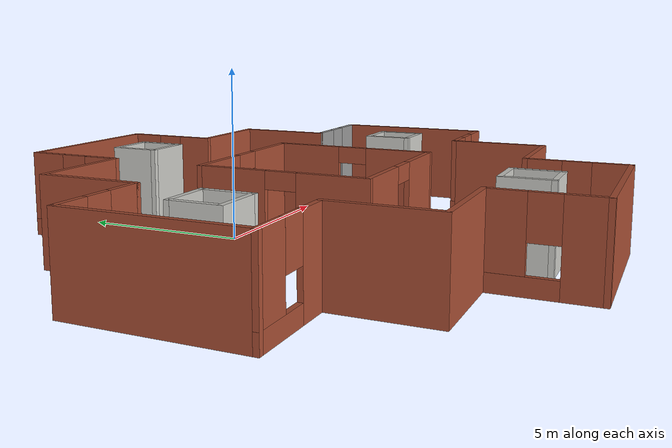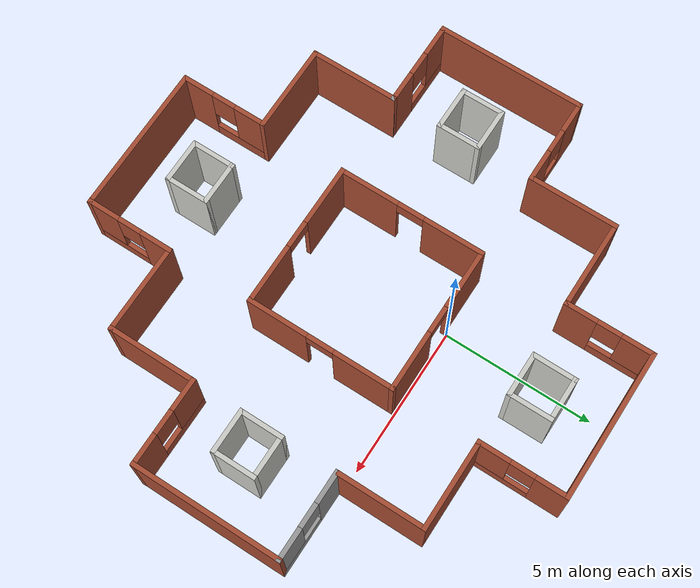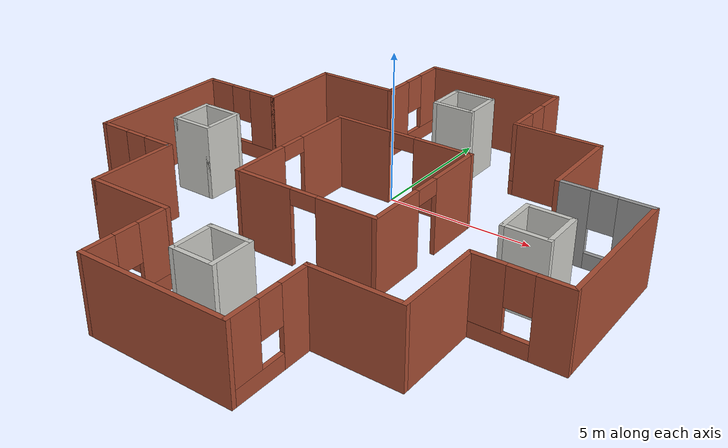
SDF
<?xml version='1.0'?>
<sdf version='1.6'>
  <model name='flower_building'>
    <pose frame=''>0.473289 -2.56902 0 0 -0 0</pose>
    <link name='Wall_0'>
      <pose frame=''>0 -2.425 0 0 -0 0</pose>
      <visual name='Wall_0_Visual_0'>
        <pose frame=''>-1.47548 0 1.25 0 -0 0</pose>
        <geometry>
          <box>
            <size>2.04905 0.15 2.5</size>
          </box>
        </geometry>
        <material>
          <script>
            <uri>file://media/materials/scripts/gazebo.material</uri>
            <name>Gazebo/Bricks</name>
          </script>
          <ambient>1 1 1 1</ambient>
        </material>
        <meta>
          <layer>0</layer>
        </meta>
      </visual>
      <collision name='Wall_0_Collision_0'>
        <geometry>
          <box>
            <size>2.04905 0.15 2.5</size>
          </box>
        </geometry>
        <pose frame=''>-1.47548 0 1.25 0 -0 0</pose>
      </collision>
      <visual name='Wall_0_Visual_1'>
        <pose frame=''>1.47452 0 1.25 0 -0 0</pose>
        <geometry>
          <box>
            <size>2.05096 0.15 2.5</size>
          </box>
        </geometry>
        <material>
          <script>
            <uri>file://media/materials/scripts/gazebo.material</uri>
            <name>Gazebo/Bricks</name>
          </script>
          <ambient>1 1 1 1</ambient>
        </material>
        <meta>
          <layer>0</layer>
        </meta>
      </visual>
      <collision name='Wall_0_Collision_1'>
        <geometry>
          <box>
            <size>2.05096 0.15 2.5</size>
          </box>
        </geometry>
        <pose frame=''>1.47452 0 1.25 0 -0 0</pose>
      </collision>
      <visual name='Wall_0_Visual_2'>
        <pose frame=''>-0.000955 0 2.25 0 -0 0</pose>
        <geometry>
          <box>
            <size>0.9 0.15 0.5</size>
          </box>
        </geometry>
        <material>
          <script>
            <uri>file://media/materials/scripts/gazebo.material</uri>
            <name>Gazebo/Bricks</name>
          </script>
          <ambient>1 1 1 1</ambient>
        </material>
        <meta>
          <layer>0</layer>
        </meta>
      </visual>
      <collision name='Wall_0_Collision_2'>
        <geometry>
          <box>
            <size>0.9 0.15 0.5</size>
          </box>
        </geometry>
        <pose frame=''>-0.000955 0 2.25 0 -0 0</pose>
      </collision>
    </link>
    <link name='Wall_1'>
      <pose frame=''>2.425 0 0 0 -0 1.5708</pose>
      <visual name='Wall_1_Visual_0'>
        <pose frame=''>-1.47928 0 1.25 0 -0 0</pose>
        <geometry>
          <box>
            <size>2.04145 0.15 2.5</size>
          </box>
        </geometry>
        <material>
          <script>
            <uri>file://media/materials/scripts/gazebo.material</uri>
            <name>Gazebo/Bricks</name>
          </script>
          <ambient>1 1 1 1</ambient>
        </material>
        <meta>
          <layer>0</layer>
        </meta>
      </visual>
      <collision name='Wall_1_Collision_0'>
        <geometry>
          <box>
            <size>2.04145 0.15 2.5</size>
          </box>
        </geometry>
        <pose frame=''>-1.47928 0 1.25 0 -0 0</pose>
      </collision>
      <visual name='Wall_1_Visual_1'>
        <pose frame=''>1.47072 0 1.25 0 -0 0</pose>
        <geometry>
          <box>
            <size>2.05855 0.15 2.5</size>
          </box>
        </geometry>
        <material>
          <script>
            <uri>file://media/materials/scripts/gazebo.material</uri>
            <name>Gazebo/Bricks</name>
          </script>
          <ambient>1 1 1 1</ambient>
        </material>
        <meta>
          <layer>0</layer>
        </meta>
      </visual>
      <collision name='Wall_1_Collision_1'>
        <geometry>
          <box>
            <size>2.05855 0.15 2.5</size>
          </box>
        </geometry>
        <pose frame=''>1.47072 0 1.25 0 -0 0</pose>
      </collision>
      <visual name='Wall_1_Visual_2'>
        <pose frame=''>-0.008554 0 2.25 0 -0 0</pose>
        <geometry>
          <box>
            <size>0.9 0.15 0.5</size>
          </box>
        </geometry>
        <material>
          <script>
            <uri>file://media/materials/scripts/gazebo.material</uri>
            <name>Gazebo/Bricks</name>
          </script>
          <ambient>1 1 1 1</ambient>
        </material>
        <meta>
          <layer>0</layer>
        </meta>
      </visual>
      <collision name='Wall_1_Collision_2'>
        <geometry>
          <box>
            <size>0.9 0.15 0.5</size>
          </box>
        </geometry>
        <pose frame=''>-0.008554 0 2.25 0 -0 0</pose>
      </collision>
    </link>
    <link name='Wall_10'>
      <collision name='Wall_10_Collision'>
        <geometry>
          <box>
            <size>5 0.15 2.5</size>
          </box>
        </geometry>
        <pose frame=''>0 0 1.25 0 -0 0</pose>
      </collision>
      <visual name='Wall_10_Visual'>
        <pose frame=''>0 0 1.25 0 -0 0</pose>
        <geometry>
          <box>
            <size>5 0.15 2.5</size>
          </box>
        </geometry>
        <material>
          <script>
            <uri>file://media/materials/scripts/gazebo.material</uri>
            <name>Gazebo/Bricks</name>
          </script>
          <ambient>1 1 1 1</ambient>
        </material>
        <meta>
          <layer>0</layer>
        </meta>
      </visual>
      <pose frame=''>-8.125 0 0 0 -0 1.5708</pose>
    </link>
    <link name='Wall_11'>
      <pose frame=''>-6.7 2.425 0 0 -0 0</pose>
      <visual name='Wall_11_Visual_0'>
        <pose frame=''>-0.954007 0 1.25 0 -0 0</pose>
        <geometry>
          <box>
            <size>1.09199 0.15 2.5</size>
          </box>
        </geometry>
        <material>
          <script>
            <uri>file://media/materials/scripts/gazebo.material</uri>
            <name>Gazebo/Bricks</name>
          </script>
          <ambient>1 1 1 1</ambient>
        </material>
        <meta>
          <layer>0</layer>
        </meta>
      </visual>
      <collision name='Wall_11_Collision_0'>
        <geometry>
          <box>
            <size>1.09199 0.15 2.5</size>
          </box>
        </geometry>
        <pose frame=''>-0.954007 0 1.25 0 -0 0</pose>
      </collision>
      <visual name='Wall_11_Visual_1'>
        <pose frame=''>0.545993 0 0.25 0 -0 0</pose>
        <geometry>
          <box>
            <size>1.90801 0.15 0.5</size>
          </box>
        </geometry>
        <material>
          <script>
            <uri>file://media/materials/scripts/gazebo.material</uri>
            <name>Gazebo/Bricks</name>
          </script>
          <ambient>1 1 1 1</ambient>
        </material>
        <meta>
          <layer>0</layer>
        </meta>
      </visual>
      <collision name='Wall_11_Collision_1'>
        <geometry>
          <box>
            <size>1.90801 0.15 0.5</size>
          </box>
        </geometry>
        <pose frame=''>0.545993 0 0.25 0 -0 0</pose>
      </collision>
      <visual name='Wall_11_Visual_2'>
        <pose frame=''>0.945993 0 1.5 0 -0 0</pose>
        <geometry>
          <box>
            <size>1.10801 0.15 2</size>
          </box>
        </geometry>
        <material>
          <script>
            <uri>file://media/materials/scripts/gazebo.material</uri>
            <name>Gazebo/Bricks</name>
          </script>
          <ambient>1 1 1 1</ambient>
        </material>
        <meta>
          <layer>0</layer>
        </meta>
      </visual>
      <collision name='Wall_11_Collision_2'>
        <geometry>
          <box>
            <size>1.10801 0.15 2</size>
          </box>
        </geometry>
        <pose frame=''>0.945993 0 1.5 0 -0 0</pose>
      </collision>
      <visual name='Wall_11_Visual_3'>
        <pose frame=''>-0.008013 0 1.9 0 -0 0</pose>
        <geometry>
          <box>
            <size>0.8 0.15 1.2</size>
          </box>
        </geometry>
        <material>
          <script>
            <uri>file://media/materials/scripts/gazebo.material</uri>
            <name>Gazebo/Bricks</name>
          </script>
          <ambient>1 1 1 1</ambient>
        </material>
        <meta>
          <layer>0</layer>
        </meta>
      </visual>
      <collision name='Wall_11_Collision_3'>
        <geometry>
          <box>
            <size>0.8 0.15 1.2</size>
          </box>
        </geometry>
        <pose frame=''>-0.008013 0 1.9 0 -0 0</pose>
      </collision>
    </link>
    <link name='Wall_12'>
      <collision name='Wall_12_Collision'>
        <geometry>
          <box>
            <size>3 0.15 2.5</size>
          </box>
        </geometry>
        <pose frame=''>0 0 1.25 0 -0 0</pose>
      </collision>
      <visual name='Wall_12_Visual'>
        <pose frame=''>0 0 1.25 0 -0 0</pose>
        <geometry>
          <box>
            <size>3 0.15 2.5</size>
          </box>
        </geometry>
        <material>
          <script>
            <uri>file://media/materials/scripts/gazebo.material</uri>
            <name>Gazebo/Bricks</name>
          </script>
          <ambient>1 1 1 1</ambient>
        </material>
        <meta>
          <layer>0</layer>
        </meta>
      </visual>
      <pose frame=''>-5.275 3.85 0 0 -0 1.5708</pose>
    </link>
    <link name='Wall_13'>
      <collision name='Wall_13_Collision'>
        <geometry>
          <box>
            <size>3 0.15 2.5</size>
          </box>
        </geometry>
        <pose frame=''>0 0 1.25 0 -0 0</pose>
      </collision>
      <visual name='Wall_13_Visual'>
        <pose frame=''>0 0 1.25 0 -0 0</pose>
        <geometry>
          <box>
            <size>3 0.15 2.5</size>
          </box>
        </geometry>
        <material>
          <script>
            <uri>file://media/materials/scripts/gazebo.material</uri>
            <name>Gazebo/Bricks</name>
          </script>
          <ambient>1 1 1 1</ambient>
        </material>
        <meta>
          <layer>0</layer>
        </meta>
      </visual>
      <pose frame=''>-3.85 5.275 0 0 -0 0</pose>
    </link>
    <link name='Wall_14'>
      <pose frame=''>-2.425 6.7 0 0 -0 1.5708</pose>
      <visual name='Wall_14_Visual_0'>
        <pose frame=''>-0.950748 0 1.25 0 -0 0</pose>
        <geometry>
          <box>
            <size>1.09851 0.15 2.5</size>
          </box>
        </geometry>
        <material>
          <script>
            <uri>file://media/materials/scripts/gazebo.material</uri>
            <name>Gazebo/Bricks</name>
          </script>
          <ambient>1 1 1 1</ambient>
        </material>
        <meta>
          <layer>0</layer>
        </meta>
      </visual>
      <collision name='Wall_14_Collision_0'>
        <geometry>
          <box>
            <size>1.09851 0.15 2.5</size>
          </box>
        </geometry>
        <pose frame=''>-0.950748 0 1.25 0 -0 0</pose>
      </collision>
      <visual name='Wall_14_Visual_1'>
        <pose frame=''>0.549252 0 0.25 0 -0 0</pose>
        <geometry>
          <box>
            <size>1.90149 0.15 0.5</size>
          </box>
        </geometry>
        <material>
          <script>
            <uri>file://media/materials/scripts/gazebo.material</uri>
            <name>Gazebo/Bricks</name>
          </script>
          <ambient>1 1 1 1</ambient>
        </material>
        <meta>
          <layer>0</layer>
        </meta>
      </visual>
      <collision name='Wall_14_Collision_1'>
        <geometry>
          <box>
            <size>1.90149 0.15 0.5</size>
          </box>
        </geometry>
        <pose frame=''>0.549252 0 0.25 0 -0 0</pose>
      </collision>
      <visual name='Wall_14_Visual_2'>
        <pose frame=''>0.949252 0 1.5 0 -0 0</pose>
        <geometry>
          <box>
            <size>1.10149 0.15 2</size>
          </box>
        </geometry>
        <material>
          <script>
            <uri>file://media/materials/scripts/gazebo.material</uri>
            <name>Gazebo/Bricks</name>
          </script>
          <ambient>1 1 1 1</ambient>
        </material>
        <meta>
          <layer>0</layer>
        </meta>
      </visual>
      <collision name='Wall_14_Collision_2'>
        <geometry>
          <box>
            <size>1.10149 0.15 2</size>
          </box>
        </geometry>
        <pose frame=''>0.949252 0 1.5 0 -0 0</pose>
      </collision>
      <visual name='Wall_14_Visual_3'>
        <pose frame=''>-0.001495 0 1.9 0 -0 0</pose>
        <geometry>
          <box>
            <size>0.8 0.15 1.2</size>
          </box>
        </geometry>
        <material>
          <script>
            <uri>file://media/materials/scripts/gazebo.material</uri>
            <name>Gazebo/Bricks</name>
          </script>
          <ambient>1 1 1 1</ambient>
        </material>
        <meta>
          <layer>0</layer>
        </meta>
      </visual>
      <collision name='Wall_14_Collision_3'>
        <geometry>
          <box>
            <size>0.8 0.15 1.2</size>
          </box>
        </geometry>
        <pose frame=''>-0.001495 0 1.9 0 -0 0</pose>
      </collision>
    </link>
    <link name='Wall_15'>
      <collision name='Wall_15_Collision'>
        <geometry>
          <box>
            <size>5 0.15 2.5</size>
          </box>
        </geometry>
        <pose frame=''>0 0 1.25 0 -0 0</pose>
      </collision>
      <visual name='Wall_15_Visual'>
        <pose frame=''>0 0 1.25 0 -0 0</pose>
        <geometry>
          <box>
            <size>5 0.15 2.5</size>
          </box>
        </geometry>
        <material>
          <script>
            <uri>file://media/materials/scripts/gazebo.material</uri>
            <name>Gazebo/Bricks</name>
          </script>
          <ambient>1 1 1 1</ambient>
        </material>
        <meta>
          <layer>0</layer>
        </meta>
      </visual>
      <pose frame=''>0 8.125 0 0 -0 0</pose>
    </link>
    <link name='Wall_18'>
      <pose frame=''>2.425 6.7 0 0 0 -1.5708</pose>
      <visual name='Wall_18_Visual_0'>
        <pose frame=''>-0.949252 0 1.25 0 -0 0</pose>
        <geometry>
          <box>
            <size>1.10149 0.15 2.5</size>
          </box>
        </geometry>
        <material>
          <script>
            <uri>file://media/materials/scripts/gazebo.material</uri>
            <name>Gazebo/Bricks</name>
          </script>
          <ambient>1 1 1 1</ambient>
        </material>
        <meta>
          <layer>0</layer>
        </meta>
      </visual>
      <collision name='Wall_18_Collision_0'>
        <geometry>
          <box>
            <size>1.10149 0.15 2.5</size>
          </box>
        </geometry>
        <pose frame=''>-0.949252 0 1.25 0 -0 0</pose>
      </collision>
      <visual name='Wall_18_Visual_1'>
        <pose frame=''>0.550748 0 0.25 0 -0 0</pose>
        <geometry>
          <box>
            <size>1.89851 0.15 0.5</size>
          </box>
        </geometry>
        <material>
          <script>
            <uri>file://media/materials/scripts/gazebo.material</uri>
            <name>Gazebo/Bricks</name>
          </script>
          <ambient>1 1 1 1</ambient>
        </material>
        <meta>
          <layer>0</layer>
        </meta>
      </visual>
      <collision name='Wall_18_Collision_1'>
        <geometry>
          <box>
            <size>1.89851 0.15 0.5</size>
          </box>
        </geometry>
        <pose frame=''>0.550748 0 0.25 0 -0 0</pose>
      </collision>
      <visual name='Wall_18_Visual_2'>
        <pose frame=''>0.950748 0 1.5 0 -0 0</pose>
        <geometry>
          <box>
            <size>1.09851 0.15 2</size>
          </box>
        </geometry>
        <material>
          <script>
            <uri>file://media/materials/scripts/gazebo.material</uri>
            <name>Gazebo/Bricks</name>
          </script>
          <ambient>1 1 1 1</ambient>
        </material>
        <meta>
          <layer>0</layer>
        </meta>
      </visual>
      <collision name='Wall_18_Collision_2'>
        <geometry>
          <box>
            <size>1.09851 0.15 2</size>
          </box>
        </geometry>
        <pose frame=''>0.950748 0 1.5 0 -0 0</pose>
      </collision>
      <visual name='Wall_18_Visual_3'>
        <pose frame=''>0.001495 0 1.9 0 -0 0</pose>
        <geometry>
          <box>
            <size>0.8 0.15 1.2</size>
          </box>
        </geometry>
        <material>
          <script>
            <uri>file://media/materials/scripts/gazebo.material</uri>
            <name>Gazebo/Bricks</name>
          </script>
          <ambient>1 1 1 1</ambient>
        </material>
        <meta>
          <layer>0</layer>
        </meta>
      </visual>
      <collision name='Wall_18_Collision_3'>
        <geometry>
          <box>
            <size>0.8 0.15 1.2</size>
          </box>
        </geometry>
        <pose frame=''>0.001495 0 1.9 0 -0 0</pose>
      </collision>
    </link>
    <link name='Wall_19'>
      <collision name='Wall_19_Collision'>
        <geometry>
          <box>
            <size>3 0.15 2.5</size>
          </box>
        </geometry>
        <pose frame=''>0 0 1.25 0 -0 0</pose>
      </collision>
      <visual name='Wall_19_Visual'>
        <pose frame=''>0 0 1.25 0 -0 0</pose>
        <geometry>
          <box>
            <size>3 0.15 2.5</size>
          </box>
        </geometry>
        <material>
          <script>
            <uri>file://media/materials/scripts/gazebo.material</uri>
            <name>Gazebo/Bricks</name>
          </script>
          <ambient>1 1 1 1</ambient>
        </material>
        <meta>
          <layer>0</layer>
        </meta>
      </visual>
      <pose frame=''>3.85 5.275 0 0 -0 0</pose>
    </link>
    <link name='Wall_2'>
      <pose frame=''>0 2.425 0 0 -0 3.14159</pose>
      <visual name='Wall_2_Visual_0'>
        <pose frame=''>-1.47452 0 1.25 0 -0 0</pose>
        <geometry>
          <box>
            <size>2.05096 0.15 2.5</size>
          </box>
        </geometry>
        <material>
          <script>
            <uri>file://media/materials/scripts/gazebo.material</uri>
            <name>Gazebo/Bricks</name>
          </script>
          <ambient>1 1 1 1</ambient>
        </material>
        <meta>
          <layer>0</layer>
        </meta>
      </visual>
      <collision name='Wall_2_Collision_0'>
        <geometry>
          <box>
            <size>2.05096 0.15 2.5</size>
          </box>
        </geometry>
        <pose frame=''>-1.47452 0 1.25 0 -0 0</pose>
      </collision>
      <visual name='Wall_2_Visual_1'>
        <pose frame=''>1.47548 0 1.25 0 -0 0</pose>
        <geometry>
          <box>
            <size>2.04905 0.15 2.5</size>
          </box>
        </geometry>
        <material>
          <script>
            <uri>file://media/materials/scripts/gazebo.material</uri>
            <name>Gazebo/Bricks</name>
          </script>
          <ambient>1 1 1 1</ambient>
        </material>
        <meta>
          <layer>0</layer>
        </meta>
      </visual>
      <collision name='Wall_2_Collision_1'>
        <geometry>
          <box>
            <size>2.04905 0.15 2.5</size>
          </box>
        </geometry>
        <pose frame=''>1.47548 0 1.25 0 -0 0</pose>
      </collision>
      <visual name='Wall_2_Visual_2'>
        <pose frame=''>0.000955 0 2.25 0 -0 0</pose>
        <geometry>
          <box>
            <size>0.9 0.15 0.5</size>
          </box>
        </geometry>
        <material>
          <script>
            <uri>file://media/materials/scripts/gazebo.material</uri>
            <name>Gazebo/Bricks</name>
          </script>
          <ambient>1 1 1 1</ambient>
        </material>
        <meta>
          <layer>0</layer>
        </meta>
      </visual>
      <collision name='Wall_2_Collision_2'>
        <geometry>
          <box>
            <size>0.9 0.15 0.5</size>
          </box>
        </geometry>
        <pose frame=''>0.000955 0 2.25 0 -0 0</pose>
      </collision>
    </link>
    <link name='Wall_20'>
      <collision name='Wall_20_Collision'>
        <geometry>
          <box>
            <size>3 0.15 2.5</size>
          </box>
        </geometry>
        <pose frame=''>0 0 1.25 0 -0 0</pose>
      </collision>
      <visual name='Wall_20_Visual'>
        <pose frame=''>0 0 1.25 0 -0 0</pose>
        <geometry>
          <box>
            <size>3 0.15 2.5</size>
          </box>
        </geometry>
        <material>
          <script>
            <uri>file://media/materials/scripts/gazebo.material</uri>
            <name>Gazebo/Bricks</name>
          </script>
          <ambient>1 1 1 1</ambient>
        </material>
        <meta>
          <layer>0</layer>
        </meta>
      </visual>
      <pose frame=''>5.275 3.85 0 0 0 -1.5708</pose>
    </link>
    <link name='Wall_21'>
      <pose frame=''>6.7 2.425 0 0 -0 0</pose>
      <visual name='Wall_21_Visual_0'>
        <pose frame=''>-0.954552 0 1.25 0 -0 0</pose>
        <geometry>
          <box>
            <size>1.09089 0.15 2.5</size>
          </box>
        </geometry>
        <material>
          <script>
            <uri>file://media/materials/scripts/gazebo.material</uri>
            <name>Gazebo/Grey</name>
          </script>
          <ambient>1 1 1 1</ambient>
        </material>
        <meta>
          <layer>0</layer>
        </meta>
      </visual>
      <collision name='Wall_21_Collision_0'>
        <geometry>
          <box>
            <size>1.09089 0.15 2.5</size>
          </box>
        </geometry>
        <pose frame=''>-0.954552 0 1.25 0 -0 0</pose>
      </collision>
      <visual name='Wall_21_Visual_1'>
        <pose frame=''>0.545448 0 0.25 0 -0 0</pose>
        <geometry>
          <box>
            <size>1.90911 0.15 0.5</size>
          </box>
        </geometry>
        <material>
          <script>
            <uri>file://media/materials/scripts/gazebo.material</uri>
            <name>Gazebo/Grey</name>
          </script>
          <ambient>1 1 1 1</ambient>
        </material>
        <meta>
          <layer>0</layer>
        </meta>
      </visual>
      <collision name='Wall_21_Collision_1'>
        <geometry>
          <box>
            <size>1.90911 0.15 0.5</size>
          </box>
        </geometry>
        <pose frame=''>0.545448 0 0.25 0 -0 0</pose>
      </collision>
      <visual name='Wall_21_Visual_2'>
        <pose frame=''>0.945448 0 1.5 0 -0 0</pose>
        <geometry>
          <box>
            <size>1.10911 0.15 2</size>
          </box>
        </geometry>
        <material>
          <script>
            <uri>file://media/materials/scripts/gazebo.material</uri>
            <name>Gazebo/Grey</name>
          </script>
          <ambient>1 1 1 1</ambient>
        </material>
        <meta>
          <layer>0</layer>
        </meta>
      </visual>
      <collision name='Wall_21_Collision_2'>
        <geometry>
          <box>
            <size>1.10911 0.15 2</size>
          </box>
        </geometry>
        <pose frame=''>0.945448 0 1.5 0 -0 0</pose>
      </collision>
      <visual name='Wall_21_Visual_3'>
        <pose frame=''>-0.009105 0 1.9 0 -0 0</pose>
        <geometry>
          <box>
            <size>0.8 0.15 1.2</size>
          </box>
        </geometry>
        <material>
          <script>
            <uri>file://media/materials/scripts/gazebo.material</uri>
            <name>Gazebo/Grey</name>
          </script>
          <ambient>1 1 1 1</ambient>
        </material>
        <meta>
          <layer>0</layer>
        </meta>
      </visual>
      <collision name='Wall_21_Collision_3'>
        <geometry>
          <box>
            <size>0.8 0.15 1.2</size>
          </box>
        </geometry>
        <pose frame=''>-0.009105 0 1.9 0 -0 0</pose>
      </collision>
    </link>
    <link name='Wall_22'>
      <collision name='Wall_22_Collision'>
        <geometry>
          <box>
            <size>5 0.15 2.5</size>
          </box>
        </geometry>
        <pose frame=''>0 0 1.25 0 -0 0</pose>
      </collision>
      <visual name='Wall_22_Visual'>
        <pose frame=''>0 0 1.25 0 -0 0</pose>
        <geometry>
          <box>
            <size>5 0.15 2.5</size>
          </box>
        </geometry>
        <material>
          <script>
            <uri>file://media/materials/scripts/gazebo.material</uri>
            <name>Gazebo/Bricks</name>
          </script>
          <ambient>1 1 1 1</ambient>
        </material>
        <meta>
          <layer>0</layer>
        </meta>
      </visual>
      <pose frame=''>8.125 0 0 0 0 -1.5708</pose>
    </link>
    <link name='Wall_23'>
      <pose frame=''>6.7 -2.425 0 0 -0 3.14159</pose>
      <visual name='Wall_23_Visual_0'>
        <pose frame=''>-0.953052 0 1.25 0 -0 0</pose>
        <geometry>
          <box>
            <size>1.0939 0.15 2.5</size>
          </box>
        </geometry>
        <material>
          <script>
            <uri>file://media/materials/scripts/gazebo.material</uri>
            <name>Gazebo/Bricks</name>
          </script>
          <ambient>1 1 1 1</ambient>
        </material>
        <meta>
          <layer>0</layer>
        </meta>
      </visual>
      <collision name='Wall_23_Collision_0'>
        <geometry>
          <box>
            <size>1.0939 0.15 2.5</size>
          </box>
        </geometry>
        <pose frame=''>-0.953052 0 1.25 0 -0 0</pose>
      </collision>
      <visual name='Wall_23_Visual_1'>
        <pose frame=''>0.546948 0 0.25 0 -0 0</pose>
        <geometry>
          <box>
            <size>1.9061 0.15 0.5</size>
          </box>
        </geometry>
        <material>
          <script>
            <uri>file://media/materials/scripts/gazebo.material</uri>
            <name>Gazebo/Bricks</name>
          </script>
          <ambient>1 1 1 1</ambient>
        </material>
        <meta>
          <layer>0</layer>
        </meta>
      </visual>
      <collision name='Wall_23_Collision_1'>
        <geometry>
          <box>
            <size>1.9061 0.15 0.5</size>
          </box>
        </geometry>
        <pose frame=''>0.546948 0 0.25 0 -0 0</pose>
      </collision>
      <visual name='Wall_23_Visual_2'>
        <pose frame=''>0.946948 0 1.5 0 -0 0</pose>
        <geometry>
          <box>
            <size>1.1061 0.15 2</size>
          </box>
        </geometry>
        <material>
          <script>
            <uri>file://media/materials/scripts/gazebo.material</uri>
            <name>Gazebo/Bricks</name>
          </script>
          <ambient>1 1 1 1</ambient>
        </material>
        <meta>
          <layer>0</layer>
        </meta>
      </visual>
      <collision name='Wall_23_Collision_2'>
        <geometry>
          <box>
            <size>1.1061 0.15 2</size>
          </box>
        </geometry>
        <pose frame=''>0.946948 0 1.5 0 -0 0</pose>
      </collision>
      <visual name='Wall_23_Visual_3'>
        <pose frame=''>-0.006104 0 1.9 0 -0 0</pose>
        <geometry>
          <box>
            <size>0.8 0.15 1.2</size>
          </box>
        </geometry>
        <material>
          <script>
            <uri>file://media/materials/scripts/gazebo.material</uri>
            <name>Gazebo/Bricks</name>
          </script>
          <ambient>1 1 1 1</ambient>
        </material>
        <meta>
          <layer>0</layer>
        </meta>
      </visual>
      <collision name='Wall_23_Collision_3'>
        <geometry>
          <box>
            <size>0.8 0.15 1.2</size>
          </box>
        </geometry>
        <pose frame=''>-0.006104 0 1.9 0 -0 0</pose>
      </collision>
    </link>
    <link name='Wall_24'>
      <collision name='Wall_24_Collision'>
        <geometry>
          <box>
            <size>3 0.15 2.5</size>
          </box>
        </geometry>
        <pose frame=''>0 0 1.25 0 -0 0</pose>
      </collision>
      <visual name='Wall_24_Visual'>
        <pose frame=''>0 0 1.25 0 -0 0</pose>
        <geometry>
          <box>
            <size>3 0.15 2.5</size>
          </box>
        </geometry>
        <material>
          <script>
            <uri>file://media/materials/scripts/gazebo.material</uri>
            <name>Gazebo/Bricks</name>
          </script>
          <ambient>1 1 1 1</ambient>
        </material>
        <meta>
          <layer>0</layer>
        </meta>
      </visual>
      <pose frame=''>5.275 -3.85 0 0 0 -1.5708</pose>
    </link>
    <link name='Wall_25'>
      <collision name='Wall_25_Collision'>
        <geometry>
          <box>
            <size>3 0.15 2.5</size>
          </box>
        </geometry>
        <pose frame=''>0 0 1.25 0 -0 0</pose>
      </collision>
      <visual name='Wall_25_Visual'>
        <pose frame=''>0 0 1.25 0 -0 0</pose>
        <geometry>
          <box>
            <size>3 0.15 2.5</size>
          </box>
        </geometry>
        <material>
          <script>
            <uri>file://media/materials/scripts/gazebo.material</uri>
            <name>Gazebo/Bricks</name>
          </script>
          <ambient>1 1 1 1</ambient>
        </material>
        <meta>
          <layer>0</layer>
        </meta>
      </visual>
      <pose frame=''>3.85 -5.275 0 0 -0 3.14159</pose>
    </link>
    <link name='Wall_26'>
      <pose frame=''>2.425 -6.7 0 0 0 -1.5708</pose>
      <visual name='Wall_26_Visual_0'>
        <pose frame=''>-0.949798 0 1.25 0 -0 0</pose>
        <geometry>
          <box>
            <size>1.1004 0.15 2.5</size>
          </box>
        </geometry>
        <material>
          <script>
            <uri>file://media/materials/scripts/gazebo.material</uri>
            <name>Gazebo/Bricks</name>
          </script>
          <ambient>1 1 1 1</ambient>
        </material>
        <meta>
          <layer>0</layer>
        </meta>
      </visual>
      <collision name='Wall_26_Collision_0'>
        <geometry>
          <box>
            <size>1.1004 0.15 2.5</size>
          </box>
        </geometry>
        <pose frame=''>-0.949798 0 1.25 0 -0 0</pose>
      </collision>
      <visual name='Wall_26_Visual_1'>
        <pose frame=''>0.550202 0 0.25 0 -0 0</pose>
        <geometry>
          <box>
            <size>1.8996 0.15 0.5</size>
          </box>
        </geometry>
        <material>
          <script>
            <uri>file://media/materials/scripts/gazebo.material</uri>
            <name>Gazebo/Bricks</name>
          </script>
          <ambient>1 1 1 1</ambient>
        </material>
        <meta>
          <layer>0</layer>
        </meta>
      </visual>
      <collision name='Wall_26_Collision_1'>
        <geometry>
          <box>
            <size>1.8996 0.15 0.5</size>
          </box>
        </geometry>
        <pose frame=''>0.550202 0 0.25 0 -0 0</pose>
      </collision>
      <visual name='Wall_26_Visual_2'>
        <pose frame=''>0.950202 0 1.5 0 -0 0</pose>
        <geometry>
          <box>
            <size>1.0996 0.15 2</size>
          </box>
        </geometry>
        <material>
          <script>
            <uri>file://media/materials/scripts/gazebo.material</uri>
            <name>Gazebo/Bricks</name>
          </script>
          <ambient>1 1 1 1</ambient>
        </material>
        <meta>
          <layer>0</layer>
        </meta>
      </visual>
      <collision name='Wall_26_Collision_2'>
        <geometry>
          <box>
            <size>1.0996 0.15 2</size>
          </box>
        </geometry>
        <pose frame=''>0.950202 0 1.5 0 -0 0</pose>
      </collision>
      <visual name='Wall_26_Visual_3'>
        <pose frame=''>0.000404 0 1.9 0 -0 0</pose>
        <geometry>
          <box>
            <size>0.8 0.15 1.2</size>
          </box>
        </geometry>
        <material>
          <script>
            <uri>file://media/materials/scripts/gazebo.material</uri>
            <name>Gazebo/Bricks</name>
          </script>
          <ambient>1 1 1 1</ambient>
        </material>
        <meta>
          <layer>0</layer>
        </meta>
      </visual>
      <collision name='Wall_26_Collision_3'>
        <geometry>
          <box>
            <size>0.8 0.15 1.2</size>
          </box>
        </geometry>
        <pose frame=''>0.000404 0 1.9 0 -0 0</pose>
      </collision>
    </link>
    <link name='Wall_27'>
      <collision name='Wall_27_Collision'>
        <geometry>
          <box>
            <size>5 0.15 2.5</size>
          </box>
        </geometry>
        <pose frame=''>0 0 1.25 0 -0 0</pose>
      </collision>
      <visual name='Wall_27_Visual'>
        <pose frame=''>0 0 1.25 0 -0 0</pose>
        <geometry>
          <box>
            <size>5 0.15 2.5</size>
          </box>
        </geometry>
        <material>
          <script>
            <uri>file://media/materials/scripts/gazebo.material</uri>
            <name>Gazebo/Bricks</name>
          </script>
          <ambient>1 1 1 1</ambient>
        </material>
        <meta>
          <layer>0</layer>
        </meta>
      </visual>
      <pose frame=''>0 -8.125 0 0 -0 3.14159</pose>
    </link>
    <link name='Wall_28'>
      <pose frame=''>-2.425 -6.7 0 0 -0 1.5708</pose>
      <visual name='Wall_28_Visual_0'>
        <pose frame=''>-0.950202 0 1.25 0 -0 0</pose>
        <geometry>
          <box>
            <size>1.0996 0.15 2.5</size>
          </box>
        </geometry>
        <material>
          <script>
            <uri>file://media/materials/scripts/gazebo.material</uri>
            <name>Gazebo/Bricks</name>
          </script>
          <ambient>1 1 1 1</ambient>
        </material>
        <meta>
          <layer>0</layer>
        </meta>
      </visual>
      <collision name='Wall_28_Collision_0'>
        <geometry>
          <box>
            <size>1.0996 0.15 2.5</size>
          </box>
        </geometry>
        <pose frame=''>-0.950202 0 1.25 0 -0 0</pose>
      </collision>
      <visual name='Wall_28_Visual_1'>
        <pose frame=''>0.549798 0 0.25 0 -0 0</pose>
        <geometry>
          <box>
            <size>1.9004 0.15 0.5</size>
          </box>
        </geometry>
        <material>
          <script>
            <uri>file://media/materials/scripts/gazebo.material</uri>
            <name>Gazebo/Bricks</name>
          </script>
          <ambient>1 1 1 1</ambient>
        </material>
        <meta>
          <layer>0</layer>
        </meta>
      </visual>
      <collision name='Wall_28_Collision_1'>
        <geometry>
          <box>
            <size>1.9004 0.15 0.5</size>
          </box>
        </geometry>
        <pose frame=''>0.549798 0 0.25 0 -0 0</pose>
      </collision>
      <visual name='Wall_28_Visual_2'>
        <pose frame=''>0.949798 0 1.5 0 -0 0</pose>
        <geometry>
          <box>
            <size>1.1004 0.15 2</size>
          </box>
        </geometry>
        <material>
          <script>
            <uri>file://media/materials/scripts/gazebo.material</uri>
            <name>Gazebo/Bricks</name>
          </script>
          <ambient>1 1 1 1</ambient>
        </material>
        <meta>
          <layer>0</layer>
        </meta>
      </visual>
      <collision name='Wall_28_Collision_2'>
        <geometry>
          <box>
            <size>1.1004 0.15 2</size>
          </box>
        </geometry>
        <pose frame=''>0.949798 0 1.5 0 -0 0</pose>
      </collision>
      <visual name='Wall_28_Visual_3'>
        <pose frame=''>-0.000404 0 1.9 0 -0 0</pose>
        <geometry>
          <box>
            <size>0.8 0.15 1.2</size>
          </box>
        </geometry>
        <material>
          <script>
            <uri>file://media/materials/scripts/gazebo.material</uri>
            <name>Gazebo/Bricks</name>
          </script>
          <ambient>1 1 1 1</ambient>
        </material>
        <meta>
          <layer>0</layer>
        </meta>
      </visual>
      <collision name='Wall_28_Collision_3'>
        <geometry>
          <box>
            <size>0.8 0.15 1.2</size>
          </box>
        </geometry>
        <pose frame=''>-0.000404 0 1.9 0 -0 0</pose>
      </collision>
    </link>
    <link name='Wall_3'>
      <pose frame=''>-2.425 0 0 0 0 -1.5708</pose>
      <visual name='Wall_3_Visual_0'>
        <pose frame=''>-1.47072 0 1.25 0 -0 0</pose>
        <geometry>
          <box>
            <size>2.05855 0.15 2.5</size>
          </box>
        </geometry>
        <material>
          <script>
            <uri>file://media/materials/scripts/gazebo.material</uri>
            <name>Gazebo/Bricks</name>
          </script>
          <ambient>1 1 1 1</ambient>
        </material>
        <meta>
          <layer>0</layer>
        </meta>
      </visual>
      <collision name='Wall_3_Collision_0'>
        <geometry>
          <box>
            <size>2.05855 0.15 2.5</size>
          </box>
        </geometry>
        <pose frame=''>-1.47072 0 1.25 0 -0 0</pose>
      </collision>
      <visual name='Wall_3_Visual_1'>
        <pose frame=''>1.47928 0 1.25 0 -0 0</pose>
        <geometry>
          <box>
            <size>2.04145 0.15 2.5</size>
          </box>
        </geometry>
        <material>
          <script>
            <uri>file://media/materials/scripts/gazebo.material</uri>
            <name>Gazebo/Bricks</name>
          </script>
          <ambient>1 1 1 1</ambient>
        </material>
        <meta>
          <layer>0</layer>
        </meta>
      </visual>
      <collision name='Wall_3_Collision_1'>
        <geometry>
          <box>
            <size>2.04145 0.15 2.5</size>
          </box>
        </geometry>
        <pose frame=''>1.47928 0 1.25 0 -0 0</pose>
      </collision>
      <visual name='Wall_3_Visual_2'>
        <pose frame=''>0.008554 0 2.25 0 -0 0</pose>
        <geometry>
          <box>
            <size>0.9 0.15 0.5</size>
          </box>
        </geometry>
        <material>
          <script>
            <uri>file://media/materials/scripts/gazebo.material</uri>
            <name>Gazebo/Bricks</name>
          </script>
          <ambient>1 1 1 1</ambient>
        </material>
        <meta>
          <layer>0</layer>
        </meta>
      </visual>
      <collision name='Wall_3_Collision_2'>
        <geometry>
          <box>
            <size>0.9 0.15 0.5</size>
          </box>
        </geometry>
        <pose frame=''>0.008554 0 2.25 0 -0 0</pose>
      </collision>
    </link>
    <link name='Wall_31'>
      <collision name='Wall_31_Collision'>
        <geometry>
          <box>
            <size>1.5 0.15 2.5</size>
          </box>
        </geometry>
        <pose frame=''>0 0 1.25 0 -0 0</pose>
      </collision>
      <visual name='Wall_31_Visual'>
        <pose frame=''>0 0 1.25 0 -0 0</pose>
        <geometry>
          <box>
            <size>1.5 0.15 2.5</size>
          </box>
        </geometry>
        <material>
          <script>
            <uri>file://media/materials/scripts/gazebo.material</uri>
            <name>Gazebo/CeilingTiled</name>
          </script>
          <ambient>1 1 1 1</ambient>
        </material>
        <meta>
          <layer>0</layer>
        </meta>
      </visual>
      <pose frame=''>-0.575 5.95 0 0 -0 1.5708</pose>
    </link>
    <link name='Wall_32'>
      <collision name='Wall_32_Collision'>
        <geometry>
          <box>
            <size>1.5 0.15 2.5</size>
          </box>
        </geometry>
        <pose frame=''>0 0 1.25 0 -0 0</pose>
      </collision>
      <visual name='Wall_32_Visual'>
        <pose frame=''>0 0 1.25 0 -0 0</pose>
        <geometry>
          <box>
            <size>1.5 0.15 2.5</size>
          </box>
        </geometry>
        <material>
          <script>
            <uri>file://media/materials/scripts/gazebo.material</uri>
            <name>Gazebo/CeilingTiled</name>
          </script>
          <ambient>1 1 1 1</ambient>
        </material>
        <meta>
          <layer>0</layer>
        </meta>
      </visual>
      <pose frame=''>0.1 6.625 0 0 -0 0</pose>
    </link>
    <link name='Wall_33'>
      <collision name='Wall_33_Collision'>
        <geometry>
          <box>
            <size>1.5 0.15 2.5</size>
          </box>
        </geometry>
        <pose frame=''>0 0 1.25 0 -0 0</pose>
      </collision>
      <visual name='Wall_33_Visual'>
        <pose frame=''>0 0 1.25 0 -0 0</pose>
        <geometry>
          <box>
            <size>1.5 0.15 2.5</size>
          </box>
        </geometry>
        <material>
          <script>
            <uri>file://media/materials/scripts/gazebo.material</uri>
            <name>Gazebo/CeilingTiled</name>
          </script>
          <ambient>1 1 1 1</ambient>
        </material>
        <meta>
          <layer>0</layer>
        </meta>
      </visual>
      <pose frame=''>0.775 5.95 0 0 0 -1.5708</pose>
    </link>
    <link name='Wall_34'>
      <collision name='Wall_34_Collision'>
        <geometry>
          <box>
            <size>1.5 0.15 2.5</size>
          </box>
        </geometry>
        <pose frame=''>0 0 1.25 0 -0 0</pose>
      </collision>
      <visual name='Wall_34_Visual'>
        <pose frame=''>0 0 1.25 0 -0 0</pose>
        <geometry>
          <box>
            <size>1.5 0.15 2.5</size>
          </box>
        </geometry>
        <material>
          <script>
            <uri>file://media/materials/scripts/gazebo.material</uri>
            <name>Gazebo/CeilingTiled</name>
          </script>
          <ambient>1 1 1 1</ambient>
        </material>
        <meta>
          <layer>0</layer>
        </meta>
      </visual>
      <pose frame=''>0.1 5.275 0 0 -0 3.14159</pose>
    </link>
    <link name='Wall_37'>
      <collision name='Wall_37_Collision'>
        <geometry>
          <box>
            <size>1.5 0.15 2.5</size>
          </box>
        </geometry>
        <pose frame=''>0 0 1.25 0 -0 0</pose>
      </collision>
      <visual name='Wall_37_Visual'>
        <pose frame=''>0 0 1.25 0 -0 0</pose>
        <geometry>
          <box>
            <size>1.5 0.15 2.5</size>
          </box>
        </geometry>
        <material>
          <script>
            <uri>file://media/materials/scripts/gazebo.material</uri>
            <name>Gazebo/CeilingTiled</name>
          </script>
          <ambient>1 1 1 1</ambient>
        </material>
        <meta>
          <layer>0</layer>
        </meta>
      </visual>
      <pose frame=''>5.95 0.575 0 0 -0 0</pose>
    </link>
    <link name='Wall_38'>
      <collision name='Wall_38_Collision'>
        <geometry>
          <box>
            <size>1.5 0.15 2.5</size>
          </box>
        </geometry>
        <pose frame=''>0 0 1.25 0 -0 0</pose>
      </collision>
      <visual name='Wall_38_Visual'>
        <pose frame=''>0 0 1.25 0 -0 0</pose>
        <geometry>
          <box>
            <size>1.5 0.15 2.5</size>
          </box>
        </geometry>
        <material>
          <script>
            <uri>file://media/materials/scripts/gazebo.material</uri>
            <name>Gazebo/CeilingTiled</name>
          </script>
          <ambient>1 1 1 1</ambient>
        </material>
        <meta>
          <layer>0</layer>
        </meta>
      </visual>
      <pose frame=''>6.625 -0.1 0 0 0 -1.5708</pose>
    </link>
    <link name='Wall_39'>
      <collision name='Wall_39_Collision'>
        <geometry>
          <box>
            <size>1.5 0.15 2.5</size>
          </box>
        </geometry>
        <pose frame=''>0 0 1.25 0 -0 0</pose>
      </collision>
      <visual name='Wall_39_Visual'>
        <pose frame=''>0 0 1.25 0 -0 0</pose>
        <geometry>
          <box>
            <size>1.5 0.15 2.5</size>
          </box>
        </geometry>
        <material>
          <script>
            <uri>file://media/materials/scripts/gazebo.material</uri>
            <name>Gazebo/CeilingTiled</name>
          </script>
          <ambient>1 1 1 1</ambient>
        </material>
        <meta>
          <layer>0</layer>
        </meta>
      </visual>
      <pose frame=''>5.95 -0.775 0 0 -0 3.14159</pose>
    </link>
    <link name='Wall_40'>
      <collision name='Wall_40_Collision'>
        <geometry>
          <box>
            <size>1.5 0.15 2.5</size>
          </box>
        </geometry>
        <pose frame=''>0 0 1.25 0 -0 0</pose>
      </collision>
      <visual name='Wall_40_Visual'>
        <pose frame=''>0 0 1.25 0 -0 0</pose>
        <geometry>
          <box>
            <size>1.5 0.15 2.5</size>
          </box>
        </geometry>
        <material>
          <script>
            <uri>file://media/materials/scripts/gazebo.material</uri>
            <name>Gazebo/CeilingTiled</name>
          </script>
          <ambient>1 1 1 1</ambient>
        </material>
        <meta>
          <layer>0</layer>
        </meta>
      </visual>
      <pose frame=''>5.275 -0.1 0 0 -0 1.5708</pose>
    </link>
    <link name='Wall_44'>
      <collision name='Wall_44_Collision'>
        <geometry>
          <box>
            <size>1.5 0.15 2.5</size>
          </box>
        </geometry>
        <pose frame=''>0 0 1.25 0 -0 0</pose>
      </collision>
      <visual name='Wall_44_Visual'>
        <pose frame=''>0 0 1.25 0 -0 0</pose>
        <geometry>
          <box>
            <size>1.5 0.15 2.5</size>
          </box>
        </geometry>
        <material>
          <script>
            <uri>file://media/materials/scripts/gazebo.material</uri>
            <name>Gazebo/CeilingTiled</name>
          </script>
          <ambient>1 1 1 1</ambient>
        </material>
        <meta>
          <layer>0</layer>
        </meta>
      </visual>
      <pose frame=''>0.575 -5.95 0 0 0 -1.5708</pose>
    </link>
    <link name='Wall_45'>
      <collision name='Wall_45_Collision'>
        <geometry>
          <box>
            <size>1.5 0.15 2.5</size>
          </box>
        </geometry>
        <pose frame=''>0 0 1.25 0 -0 0</pose>
      </collision>
      <visual name='Wall_45_Visual'>
        <pose frame=''>0 0 1.25 0 -0 0</pose>
        <geometry>
          <box>
            <size>1.5 0.15 2.5</size>
          </box>
        </geometry>
        <material>
          <script>
            <uri>file://media/materials/scripts/gazebo.material</uri>
            <name>Gazebo/CeilingTiled</name>
          </script>
          <ambient>1 1 1 1</ambient>
        </material>
        <meta>
          <layer>0</layer>
        </meta>
      </visual>
      <pose frame=''>-0.1 -6.625 0 0 -0 3.14159</pose>
    </link>
    <link name='Wall_46'>
      <collision name='Wall_46_Collision'>
        <geometry>
          <box>
            <size>1.5 0.15 2.5</size>
          </box>
        </geometry>
        <pose frame=''>0 0 1.25 0 -0 0</pose>
      </collision>
      <visual name='Wall_46_Visual'>
        <pose frame=''>0 0 1.25 0 -0 0</pose>
        <geometry>
          <box>
            <size>1.5 0.15 2.5</size>
          </box>
        </geometry>
        <material>
          <script>
            <uri>file://media/materials/scripts/gazebo.material</uri>
            <name>Gazebo/CeilingTiled</name>
          </script>
          <ambient>1 1 1 1</ambient>
        </material>
        <meta>
          <layer>0</layer>
        </meta>
      </visual>
      <pose frame=''>-0.775 -5.95 0 0 -0 1.5708</pose>
    </link>
    <link name='Wall_47'>
      <collision name='Wall_47_Collision'>
        <geometry>
          <box>
            <size>1.5 0.15 2.5</size>
          </box>
        </geometry>
        <pose frame=''>0 0 1.25 0 -0 0</pose>
      </collision>
      <visual name='Wall_47_Visual'>
        <pose frame=''>0 0 1.25 0 -0 0</pose>
        <geometry>
          <box>
            <size>1.5 0.15 2.5</size>
          </box>
        </geometry>
        <material>
          <script>
            <uri>file://media/materials/scripts/gazebo.material</uri>
            <name>Gazebo/CeilingTiled</name>
          </script>
          <ambient>1 1 1 1</ambient>
        </material>
        <meta>
          <layer>0</layer>
        </meta>
      </visual>
      <pose frame=''>-0.1 -5.275 0 0 -0 0</pose>
    </link>
    <link name='Wall_5'>
      <collision name='Wall_5_Collision'>
        <geometry>
          <box>
            <size>0.15 0.15 2.5</size>
          </box>
        </geometry>
        <pose frame=''>0 0 1.25 0 -0 0</pose>
      </collision>
      <visual name='Wall_5_Visual'>
        <pose frame=''>0 0 1.25 0 -0 0</pose>
        <geometry>
          <box>
            <size>0.15 0.15 2.5</size>
          </box>
        </geometry>
        <material>
          <script>
            <uri>file://media/materials/scripts/gazebo.material</uri>
            <name>Gazebo/Grey</name>
          </script>
          <ambient>1 1 1 1</ambient>
        </material>
        <meta>
          <layer>0</layer>
        </meta>
      </visual>
      <pose frame=''>-5.275 -2.425 0 0 -0 0</pose>
    </link>
    <link name='Wall_51'>
      <collision name='Wall_51_Collision'>
        <geometry>
          <box>
            <size>1.5 0.15 2.5</size>
          </box>
        </geometry>
        <pose frame=''>0 0 1.25 0 -0 0</pose>
      </collision>
      <visual name='Wall_51_Visual'>
        <pose frame=''>0 0 1.25 0 -0 0</pose>
        <geometry>
          <box>
            <size>1.5 0.15 2.5</size>
          </box>
        </geometry>
        <material>
          <script>
            <uri>file://media/materials/scripts/gazebo.material</uri>
            <name>Gazebo/CeilingTiled</name>
          </script>
          <ambient>1 1 1 1</ambient>
        </material>
        <meta>
          <layer>0</layer>
        </meta>
      </visual>
      <pose frame=''>-5.95 0.575 0 0 -0 3.14159</pose>
    </link>
    <link name='Wall_52'>
      <collision name='Wall_52_Collision'>
        <geometry>
          <box>
            <size>1.5 0.15 2.5</size>
          </box>
        </geometry>
        <pose frame=''>0 0 1.25 0 -0 0</pose>
      </collision>
      <visual name='Wall_52_Visual'>
        <pose frame=''>0 0 1.25 0 -0 0</pose>
        <geometry>
          <box>
            <size>1.5 0.15 2.5</size>
          </box>
        </geometry>
        <material>
          <script>
            <uri>file://media/materials/scripts/gazebo.material</uri>
            <name>Gazebo/CeilingTiled</name>
          </script>
          <ambient>1 1 1 1</ambient>
        </material>
        <meta>
          <layer>0</layer>
        </meta>
      </visual>
      <pose frame=''>-6.625 -0.1 0 0 0 -1.5708</pose>
    </link>
    <link name='Wall_53'>
      <collision name='Wall_53_Collision'>
        <geometry>
          <box>
            <size>1.5 0.15 2.5</size>
          </box>
        </geometry>
        <pose frame=''>0 0 1.25 0 -0 0</pose>
      </collision>
      <visual name='Wall_53_Visual'>
        <pose frame=''>0 0 1.25 0 -0 0</pose>
        <geometry>
          <box>
            <size>1.5 0.15 2.5</size>
          </box>
        </geometry>
        <material>
          <script>
            <uri>file://media/materials/scripts/gazebo.material</uri>
            <name>Gazebo/CeilingTiled</name>
          </script>
          <ambient>1 1 1 1</ambient>
        </material>
        <meta>
          <layer>0</layer>
        </meta>
      </visual>
      <pose frame=''>-5.95 -0.775 0 0 -0 0</pose>
    </link>
    <link name='Wall_54'>
      <collision name='Wall_54_Collision'>
        <geometry>
          <box>
            <size>1.5 0.15 2.5</size>
          </box>
        </geometry>
        <pose frame=''>0 0 1.25 0 -0 0</pose>
      </collision>
      <visual name='Wall_54_Visual'>
        <pose frame=''>0 0 1.25 0 -0 0</pose>
        <geometry>
          <box>
            <size>1.5 0.15 2.5</size>
          </box>
        </geometry>
        <material>
          <script>
            <uri>file://media/materials/scripts/gazebo.material</uri>
            <name>Gazebo/CeilingTiled</name>
          </script>
          <ambient>1 1 1 1</ambient>
        </material>
        <meta>
          <layer>0</layer>
        </meta>
      </visual>
      <pose frame=''>-5.275 -0.1 0 0 -0 1.5708</pose>
    </link>
    <link name='Wall_6'>
      <collision name='Wall_6_Collision'>
        <geometry>
          <box>
            <size>3 0.15 2.5</size>
          </box>
        </geometry>
        <pose frame=''>0 0 1.25 0 -0 0</pose>
      </collision>
      <visual name='Wall_6_Visual'>
        <pose frame=''>0 0 1.25 0 -0 0</pose>
        <geometry>
          <box>
            <size>3 0.15 2.5</size>
          </box>
        </geometry>
        <material>
          <script>
            <uri>file://media/materials/scripts/gazebo.material</uri>
            <name>Gazebo/Bricks</name>
          </script>
          <ambient>1 1 1 1</ambient>
        </material>
        <meta>
          <layer>0</layer>
        </meta>
      </visual>
      <pose frame=''>-5.275 -3.85 0 0 0 -1.5708</pose>
    </link>
    <link name='Wall_7'>
      <collision name='Wall_7_Collision'>
        <geometry>
          <box>
            <size>3 0.15 2.5</size>
          </box>
        </geometry>
        <pose frame=''>0 0 1.25 0 -0 0</pose>
      </collision>
      <visual name='Wall_7_Visual'>
        <pose frame=''>0 0 1.25 0 -0 0</pose>
        <geometry>
          <box>
            <size>3 0.15 2.5</size>
          </box>
        </geometry>
        <material>
          <script>
            <uri>file://media/materials/scripts/gazebo.material</uri>
            <name>Gazebo/Bricks</name>
          </script>
          <ambient>1 1 1 1</ambient>
        </material>
        <meta>
          <layer>0</layer>
        </meta>
      </visual>
      <pose frame=''>-3.85 -5.275 0 0 -0 0</pose>
    </link>
    <link name='Wall_9'>
      <pose frame=''>-6.7 -2.425 0 0 -0 3.14159</pose>
      <visual name='Wall_9_Visual_0'>
        <pose frame=''>-0.953598 0 1.25 0 -0 0</pose>
        <geometry>
          <box>
            <size>1.09281 0.15 2.5</size>
          </box>
        </geometry>
        <material>
          <script>
            <uri>file://media/materials/scripts/gazebo.material</uri>
            <name>Gazebo/Bricks</name>
          </script>
          <ambient>1 1 1 1</ambient>
        </material>
        <meta>
          <layer>0</layer>
        </meta>
      </visual>
      <collision name='Wall_9_Collision_0'>
        <geometry>
          <box>
            <size>1.09281 0.15 2.5</size>
          </box>
        </geometry>
        <pose frame=''>-0.953598 0 1.25 0 -0 0</pose>
      </collision>
      <visual name='Wall_9_Visual_1'>
        <pose frame=''>0.546402 0 0.25 0 -0 0</pose>
        <geometry>
          <box>
            <size>1.90719 0.15 0.5</size>
          </box>
        </geometry>
        <material>
          <script>
            <uri>file://media/materials/scripts/gazebo.material</uri>
            <name>Gazebo/Bricks</name>
          </script>
          <ambient>1 1 1 1</ambient>
        </material>
        <meta>
          <layer>0</layer>
        </meta>
      </visual>
      <collision name='Wall_9_Collision_1'>
        <geometry>
          <box>
            <size>1.90719 0.15 0.5</size>
          </box>
        </geometry>
        <pose frame=''>0.546402 0 0.25 0 -0 0</pose>
      </collision>
      <visual name='Wall_9_Visual_2'>
        <pose frame=''>0.946402 0 1.5 0 -0 0</pose>
        <geometry>
          <box>
            <size>1.10719 0.15 2</size>
          </box>
        </geometry>
        <material>
          <script>
            <uri>file://media/materials/scripts/gazebo.material</uri>
            <name>Gazebo/Bricks</name>
          </script>
          <ambient>1 1 1 1</ambient>
        </material>
        <meta>
          <layer>0</layer>
        </meta>
      </visual>
      <collision name='Wall_9_Collision_2'>
        <geometry>
          <box>
            <size>1.10719 0.15 2</size>
          </box>
        </geometry>
        <pose frame=''>0.946402 0 1.5 0 -0 0</pose>
      </collision>
      <visual name='Wall_9_Visual_3'>
        <pose frame=''>-0.007195 0 1.9 0 -0 0</pose>
        <geometry>
          <box>
            <size>0.8 0.15 1.2</size>
          </box>
        </geometry>
        <material>
          <script>
            <uri>file://media/materials/scripts/gazebo.material</uri>
            <name>Gazebo/Bricks</name>
          </script>
          <ambient>1 1 1 1</ambient>
        </material>
        <meta>
          <layer>0</layer>
        </meta>
      </visual>
      <collision name='Wall_9_Collision_3'>
        <geometry>
          <box>
            <size>0.8 0.15 1.2</size>
          </box>
        </geometry>
        <pose frame=''>-0.007195 0 1.9 0 -0 0</pose>
      </collision>
    </link>
    <static>1</static>
  </model>
</sdf>
